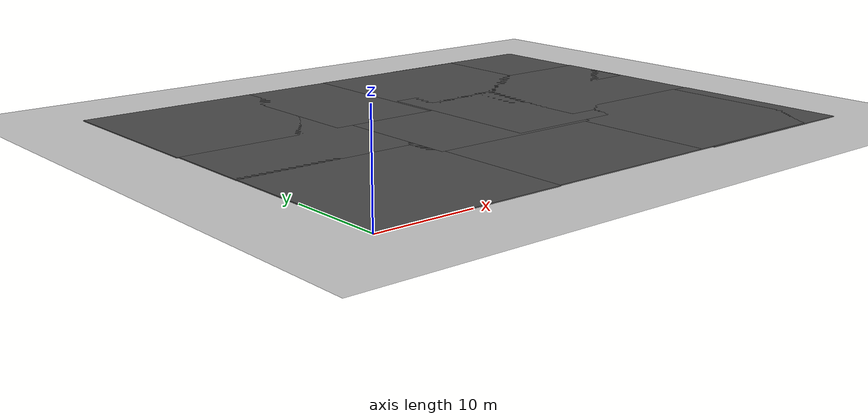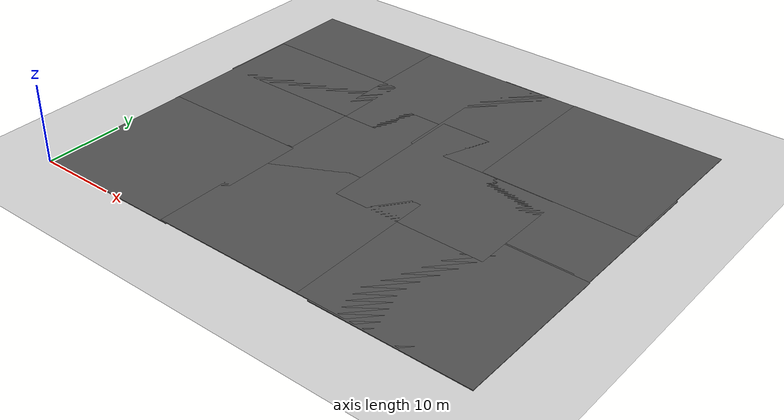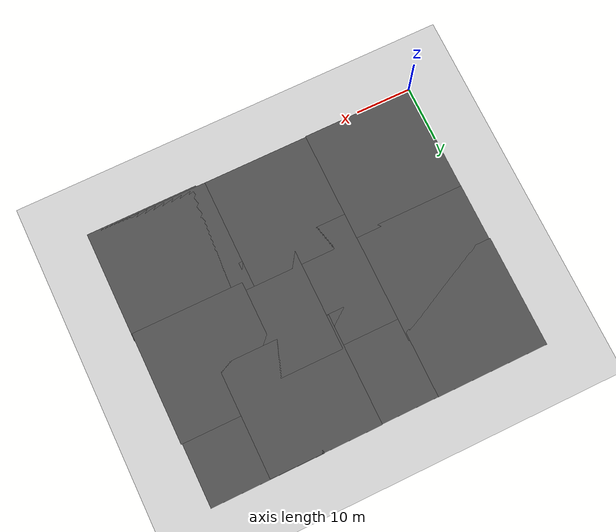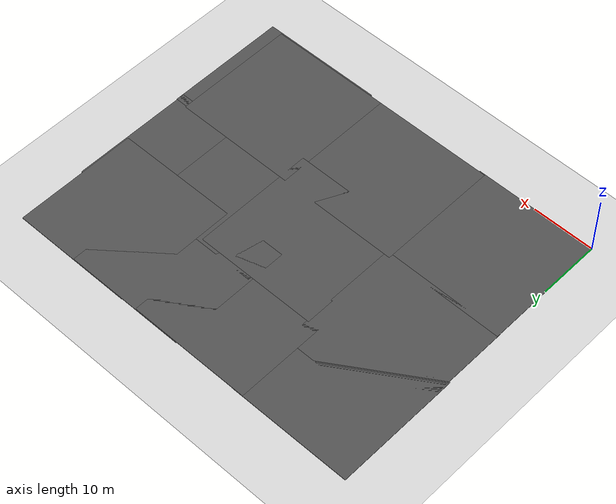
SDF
<sdf version="1.6">
 <world name="default">
  <light name="sun" type="directional">
   <pose>0 0 10 0 -0 0</pose>
   <diffuse>0.8 0.8 0.8 1</diffuse>
   <specular>0.2 0.2 0.2 1</specular>
   <attenuation>
    <range>1000</range>
    <constant>0.9</constant>
    <linear>0.01</linear>
    <quadratic>0.001</quadratic>
   </attenuation>
   <direction>-0.5 0.1 -0.9</direction>
  </light>
  <model name="ground_plane">
   <static>1</static>
   <link name="link">
    <collision name="collision">
     <geometry><plane><normal>0 0 1</normal><size>100 100</size></plane></geometry>
     <surface><friction><ode><mu>100</mu><mu2>50</mu2></ode></friction></surface>
    </collision>
    <visual name="visual">
     <cast_shadows>0</cast_shadows>
     <geometry><plane><normal>0 0 1</normal><size>100 100</size></plane></geometry>
     <material>
      <script><uri>file://media/materials/scripts/gazebo.material</uri><name>Gazebo/Grey</name></script>
     </material>
    </visual>
   </link>
  </model>
  <gravity>0 0 -9.8</gravity>
  <magnetic_field>6e-06 2.3e-05 -4.2e-05</magnetic_field>
  <atmosphere type="adiabatic"/>
  <physics name="default_physics" default="0" type="ode">
   <max_step_size>0.001</max_step_size>
   <real_time_factor>1</real_time_factor>
   <real_time_update_rate>1000</real_time_update_rate>
  </physics>
  <scene><ambient>0.4 0.4 0.4 1</ambient><background>0.7 0.7 0.7 1</background><shadows>1</shadows></scene>
  <audio><device>default</device></audio>
  <spherical_coordinates>
   <surface_model>EARTH_WGS84</surface_model>
   <latitude_deg>0</latitude_deg>
   <longitude_deg>0</longitude_deg>
   <elevation>0</elevation>
   <heading_deg>0</heading_deg>
  </spherical_coordinates>
  <model name="asphalt_plane">
   <static>1</static>
   <link name="link">
    <collision name="collision"><geometry><box><size>20 20 0.1</size></box></geometry></collision>
    <visual name="visual">
     <cast_shadows>0</cast_shadows>
     <geometry><box><size>20 20 0.1</size></box></geometry>
     <material>
      <script>
       <uri>model://asphalt_plane/materials/scripts</uri>
       <uri>model://asphalt_plane/materials/textures</uri>
       <name>vrc/asphalt</name>
      </script>
     </material>
    </visual>
   </link>
   <pose>9.94556 10.0179 0 0 -0 0</pose>
  </model>
  <model name="asphalt_plane_0">
   <static>1</static>
   <link name="link">
    <collision name="collision"><geometry><box><size>20 20 0.1</size></box></geometry></collision>
    <visual name="visual">
     <cast_shadows>0</cast_shadows>
     <geometry><box><size>20 20 0.1</size></box></geometry>
     <material>
      <script>
       <uri>model://asphalt_plane/materials/scripts</uri>
       <uri>model://asphalt_plane/materials/textures</uri>
       <name>vrc/asphalt</name>
      </script>
     </material>
    </visual>
   </link>
   <pose>28.9695 10.1396 0 0 -0 0</pose>
  </model>
  <model name="asphalt_plane_clone">
   <static>1</static>
   <link name="link">
    <collision name="collision"><geometry><box><size>20 20 0.1</size></box></geometry></collision>
    <visual name="visual">
     <cast_shadows>0</cast_shadows>
     <geometry><box><size>20 20 0.1</size></box></geometry>
     <material>
      <script>
       <uri>model://asphalt_plane/materials/scripts</uri>
       <uri>model://asphalt_plane/materials/textures</uri>
       <name>vrc/asphalt</name>
      </script>
     </material>
    </visual>
   </link>
   <pose>48.6117 10.1334 0 0 -0 0</pose>
  </model>
  <model name="asphalt_plane_clone_0">
   <static>1</static>
   <link name="link">
    <collision name="collision"><geometry><box><size>20 20 0.1</size></box></geometry></collision>
    <visual name="visual">
     <cast_shadows>0</cast_shadows>
     <geometry><box><size>20 20 0.1</size></box></geometry>
     <material>
      <script>
       <uri>model://asphalt_plane/materials/scripts</uri>
       <uri>model://asphalt_plane/materials/textures</uri>
       <name>vrc/asphalt</name>
      </script>
     </material>
    </visual>
   </link>
   <pose>9.90741 29.4526 0 0 -0 0</pose>
  </model>
  <model name="asphalt_plane_clone_1">
   <static>1</static>
   <link name="link">
    <collision name="collision"><geometry><box><size>20 20 0.1</size></box></geometry></collision>
    <visual name="visual">
     <cast_shadows>0</cast_shadows>
     <geometry><box><size>20 20 0.1</size></box></geometry>
     <material>
      <script>
       <uri>model://asphalt_plane/materials/scripts</uri>
       <uri>model://asphalt_plane/materials/textures</uri>
       <name>vrc/asphalt</name>
      </script>
     </material>
    </visual>
   </link>
   <pose>9.72617 39.7367 0 0 -0 0</pose>
  </model>
  <model name="asphalt_plane_clone_2">
   <static>1</static>
   <link name="link">
    <collision name="collision"><geometry><box><size>20 20 0.1</size></box></geometry></collision>
    <visual name="visual">
     <cast_shadows>0</cast_shadows>
     <geometry><box><size>20 20 0.1</size></box></geometry>
     <material>
      <script>
       <uri>model://asphalt_plane/materials/scripts</uri>
       <uri>model://asphalt_plane/materials/textures</uri>
       <name>vrc/asphalt</name>
      </script>
     </material>
    </visual>
   </link>
   <pose>27.7603 39.7037 0 0 -0 0</pose>
  </model>
  <model name="asphalt_plane_clone_3">
   <static>1</static>
   <link name="link">
    <collision name="collision"><geometry><box><size>20 20 0.1</size></box></geometry></collision>
    <visual name="visual">
     <cast_shadows>0</cast_shadows>
     <geometry><box><size>20 20 0.1</size></box></geometry>
     <material>
      <script>
       <uri>model://asphalt_plane/materials/scripts</uri>
       <uri>model://asphalt_plane/materials/textures</uri>
       <name>vrc/asphalt</name>
      </script>
     </material>
    </visual>
   </link>
   <pose>39.8939 39.8008 0 0 -0 0</pose>
  </model>
  <model name="asphalt_plane_clone_4">
   <static>1</static>
   <link name="link">
    <collision name="collision"><geometry><box><size>20 20 0.1</size></box></geometry></collision>
    <visual name="visual">
     <cast_shadows>0</cast_shadows>
     <geometry><box><size>20 20 0.1</size></box></geometry>
     <material>
      <script>
       <uri>model://asphalt_plane/materials/scripts</uri>
       <uri>model://asphalt_plane/materials/textures</uri>
       <name>vrc/asphalt</name>
      </script>
     </material>
    </visual>
   </link>
   <pose>50.2931 39.8649 0 0 -0 0</pose>
  </model>
  <model name="asphalt_plane_clone_5">
   <static>1</static>
   <link name="link">
    <collision name="collision"><geometry><box><size>20 20 0.1</size></box></geometry></collision>
    <visual name="visual">
     <cast_shadows>0</cast_shadows>
     <geometry><box><size>20 20 0.1</size></box></geometry>
     <material>
      <script>
       <uri>model://asphalt_plane/materials/scripts</uri>
       <uri>model://asphalt_plane/materials/textures</uri>
       <name>vrc/asphalt</name>
      </script>
     </material>
    </visual>
   </link>
   <pose>50.4864 28.6532 0 0 -0 0</pose>
  </model>
  <model name="asphalt_plane_clone_6">
   <static>1</static>
   <link name="link">
    <collision name="collision"><geometry><box><size>20 20 0.1</size></box></geometry></collision>
    <visual name="visual">
     <cast_shadows>0</cast_shadows>
     <geometry><box><size>20 20 0.1</size></box></geometry>
     <material>
      <script>
       <uri>model://asphalt_plane/materials/scripts</uri>
       <uri>model://asphalt_plane/materials/textures</uri>
       <name>vrc/asphalt</name>
      </script>
     </material>
    </visual>
   </link>
   <pose>29.6268 25.404 0 0 -0 0</pose>
  </model>
  <model name="asphalt_plane_clone_7">
   <static>1</static>
   <link name="link">
    <collision name="collision"><geometry><box><size>20 20 0.1</size></box></geometry></collision>
    <visual name="visual">
     <cast_shadows>0</cast_shadows>
     <geometry><box><size>20 20 0.1</size></box></geometry>
     <material>
      <script>
       <uri>model://asphalt_plane/materials/scripts</uri>
       <uri>model://asphalt_plane/materials/textures</uri>
       <name>vrc/asphalt</name>
      </script>
     </material>
    </visual>
   </link>
   <pose>40.2488 25.9331 0 0 -0 0</pose>
  </model>
  <model name="asphalt_plane_clone_8">
   <static>1</static>
   <link name="link">
    <collision name="collision"><geometry><box><size>20 20 0.1</size></box></geometry></collision>
    <visual name="visual">
     <cast_shadows>0</cast_shadows>
     <geometry><box><size>20 20 0.1</size></box></geometry>
     <material>
      <script>
       <uri>model://asphalt_plane/materials/scripts</uri>
       <uri>model://asphalt_plane/materials/textures</uri>
       <name>vrc/asphalt</name>
      </script>
     </material>
    </visual>
   </link>
   <pose>50.5794 9.93495 0 0 -0 0</pose>
  </model>
 </world>
</sdf>
